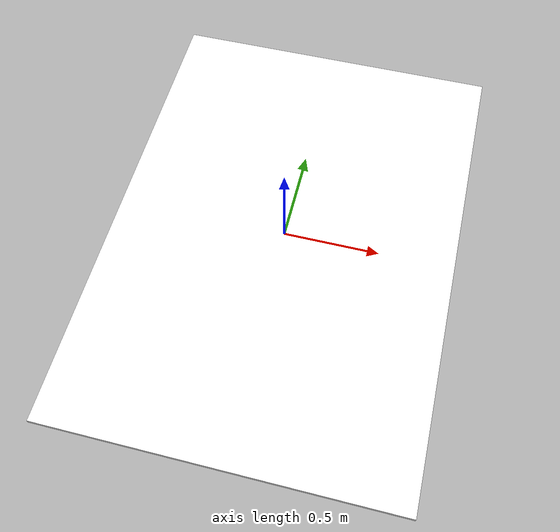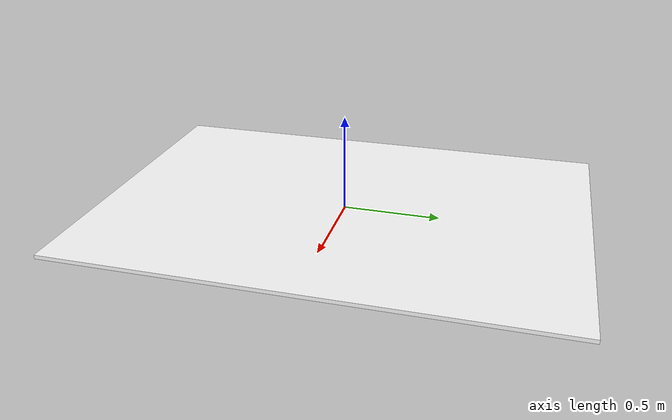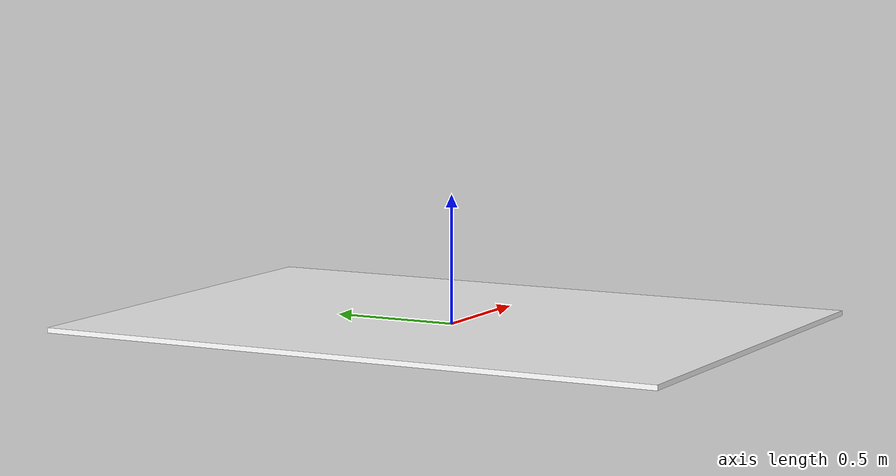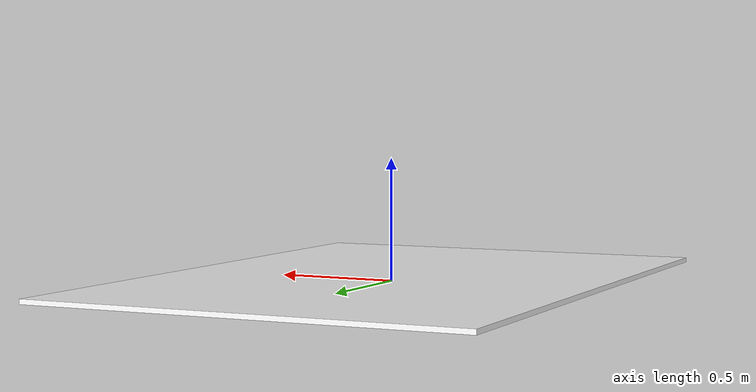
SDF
<?xml version="1.0"?>
<sdf version="1.9">
  <model name="qr_panel_a3">
    <static>true</static>
    <link name="panel">
      <pose>0 0 0.01 0 0 0</pose>
      <visual name="face">
        <geometry>
          <box><size>1.782 2.52 0.02</size></box>
        </geometry>
        <material>
          <diffuse>1 1 1 1</diffuse>
          <specular>0.05 0.05 0.05 1</specular>
          <pbr>
            <metal>
              <albedo_map>model://qr_panel_a3/materials/textures/qr.png</albedo_map>
            </metal>
          </pbr>
        </material>
      </visual>
      <collision name="surface">
        <geometry>
          <box><size>1.782 2.52 0.02</size></box>
        </geometry>
      </collision>
    </link>
  </model>
</sdf>
